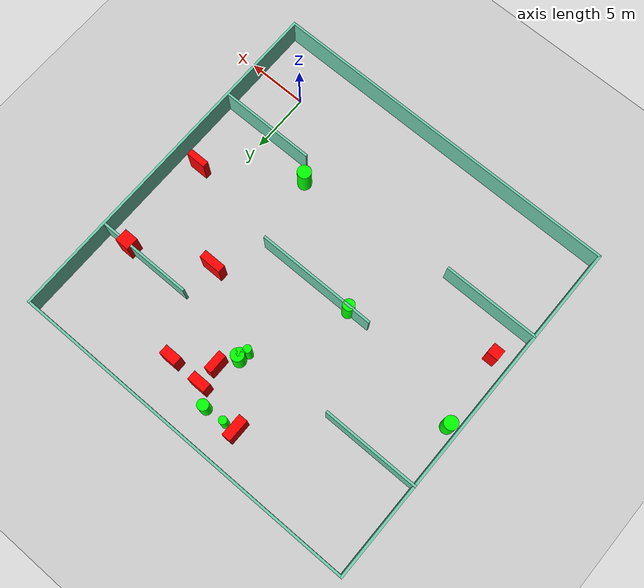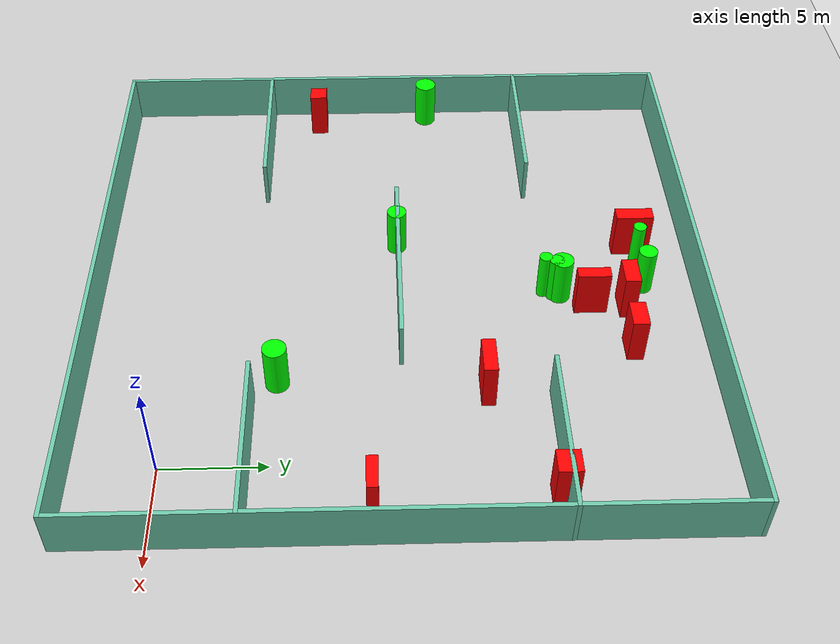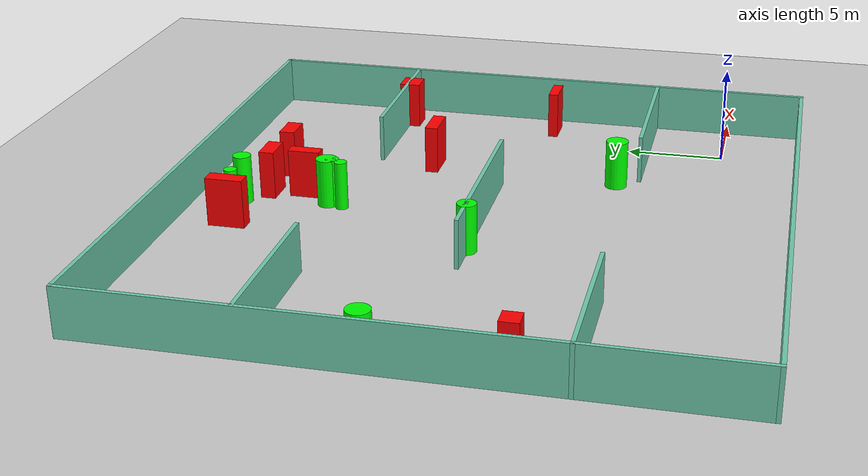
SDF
<sdf version="1.7">
 <world name="default">
  <light name="sun" type="directional">
   <pose>0 0 10 0 -0 0</pose>
   <diffuse>0.8 0.8 0.8 1</diffuse>
   <specular>0.2 0.2 0.2 1</specular>
   <attenuation>
    <range>1000</range>
    <constant>0.9</constant>
    <linear>0.01</linear>
    <quadratic>0.001</quadratic>
   </attenuation>
   <direction>-0.5 0.1 -0.9</direction>
   <spot><inner_angle>0</inner_angle><outer_angle>0</outer_angle><falloff>0</falloff></spot>
  </light>
  <model name="ground_plane">
   <static>1</static>
   <link name="link">
    <collision name="collision">
     <geometry><plane><normal>0 0 1</normal><size>100 100</size></plane></geometry>
     <surface>
      <contact><collide_bitmask>65535</collide_bitmask></contact>
      <friction><ode><mu>100</mu><mu2>50</mu2></ode></friction>
     </surface>
    </collision>
    <visual name="visual">
     <cast_shadows>0</cast_shadows>
     <geometry><plane><normal>0 0 1</normal><size>100 100</size></plane></geometry>
     <material>
      <script><uri>file://media/materials/scripts/gazebo.material</uri><name>Gazebo/Grey</name></script>
     </material>
    </visual>
   </link>
  </model>
  <gravity>0 0 -9.8</gravity>
  <magnetic_field>6e-06 2.3e-05 -4.2e-05</magnetic_field>
  <atmosphere type="adiabatic"/>
  <physics type="ode">
   <max_step_size>0.001</max_step_size>
   <real_time_factor>1</real_time_factor>
   <real_time_update_rate>1000</real_time_update_rate>
  </physics>
  <scene><ambient>0.4 0.4 0.4 1</ambient><background>0.7 0.7 0.7 1</background><shadows>1</shadows></scene>
  <spherical_coordinates>
   <surface_model>EARTH_WGS84</surface_model>
   <latitude_deg>0</latitude_deg>
   <longitude_deg>0</longitude_deg>
   <elevation>0</elevation>
   <heading_deg>0</heading_deg>
  </spherical_coordinates>
  <model name="my_base_walls">
   <link name="Wall_10">
    <collision name="Wall_10_Collision">
     <geometry><box><size>8.2 0.2 2.5</size></box></geometry>
     <pose>0 0 1.25 0 -0 0</pose>
    </collision>
    <visual name="Wall_10_Visual">
     <pose>0 0 1.25 0 -0 0</pose>
     <geometry><box><size>8.2 0.2 2.5</size></box></geometry>
     <material>
      <script><uri>file://media/materials/scripts/gazebo.material</uri><name>Gazebo/Grey</name></script>
      <ambient>0.435294 0.796078 0.67451 1</ambient>
     </material>
     <meta><layer>0</layer></meta>
    </visual>
    <pose>-11 -7 0 0 -0 0</pose>
   </link>
   <link name="Wall_12">
    <collision name="Wall_12_Collision">
     <geometry><box><size>8.2 0.2 2.5</size></box></geometry>
     <pose>0 0 1.25 0 -0 0</pose>
    </collision>
    <visual name="Wall_12_Visual">
     <pose>0 0 1.25 0 -0 0</pose>
     <geometry><box><size>8.2 0.2 2.5</size></box></geometry>
     <material>
      <script><uri>file://media/materials/scripts/gazebo.material</uri><name>Gazebo/Grey</name></script>
      <ambient>0.435294 0.796078 0.67451 1</ambient>
     </material>
     <meta><layer>0</layer></meta>
    </visual>
    <pose>-11 7 0 0 -0 0</pose>
   </link>
   <link name="Wall_14">
    <collision name="Wall_14_Collision">
     <geometry><box><size>8.2 0.2 2.5</size></box></geometry>
     <pose>0 0 1.25 0 -0 0</pose>
    </collision>
    <visual name="Wall_14_Visual">
     <pose>0 0 1.25 0 -0 0</pose>
     <geometry><box><size>8.2 0.2 2.5</size></box></geometry>
     <material>
      <script><uri>file://media/materials/scripts/gazebo.material</uri><name>Gazebo/Grey</name></script>
      <ambient>0.435294 0.796078 0.67451 1</ambient>
     </material>
     <meta><layer>0</layer></meta>
    </visual>
    <pose>11 7 0 0 -0 3.14159</pose>
   </link>
   <link name="Wall_16">
    <collision name="Wall_16_Collision">
     <geometry><box><size>10.2 0.2 2.5</size></box></geometry>
     <pose>0 0 1.25 0 -0 0</pose>
    </collision>
    <visual name="Wall_16_Visual">
     <pose>0 0 1.25 0 -0 0</pose>
     <geometry><box><size>10.2 0.2 2.5</size></box></geometry>
     <material>
      <script><uri>file://media/materials/scripts/gazebo.material</uri><name>Gazebo/Grey</name></script>
      <ambient>0.435294 0.796078 0.67451 1</ambient>
     </material>
     <meta><layer>0</layer></meta>
    </visual>
    <pose>0 0 0 0 -0 3.14159</pose>
   </link>
   <link name="Wall_2">
    <collision name="Wall_2_Collision">
     <geometry><box><size>30.2 0.2 2.5</size></box></geometry>
     <pose>0 0 1.25 0 -0 0</pose>
    </collision>
    <visual name="Wall_2_Visual">
     <pose>0 0 1.25 0 -0 0</pose>
     <geometry><box><size>30.2 0.2 2.5</size></box></geometry>
     <material>
      <script><uri>file://media/materials/scripts/gazebo.material</uri><name>Gazebo/Grey</name></script>
      <ambient>0.435294 0.796078 0.67451 1</ambient>
     </material>
     <meta><layer>0</layer></meta>
    </visual>
    <pose>0 -15 0 0 -0 3.14159</pose>
   </link>
   <link name="Wall_3">
    <collision name="Wall_3_Collision">
     <geometry><box><size>30.2 0.2 2.5</size></box></geometry>
     <pose>0 0 1.25 0 -0 0</pose>
    </collision>
    <visual name="Wall_3_Visual">
     <pose>0 0 1.25 0 -0 0</pose>
     <geometry><box><size>30.2 0.2 2.5</size></box></geometry>
     <material>
      <script><uri>file://media/materials/scripts/gazebo.material</uri><name>Gazebo/Grey</name></script>
      <ambient>0.435294 0.796078 0.67451 1</ambient>
     </material>
     <meta><layer>0</layer></meta>
    </visual>
    <pose>-15 0 0 0 -0 1.5708</pose>
   </link>
   <link name="Wall_4">
    <collision name="Wall_4_Collision">
     <geometry><box><size>30.2 0.2 2.5</size></box></geometry>
     <pose>0 0 1.25 0 -0 0</pose>
    </collision>
    <visual name="Wall_4_Visual">
     <pose>0 0 1.25 0 -0 0</pose>
     <geometry><box><size>30.2 0.2 2.5</size></box></geometry>
     <material>
      <script><uri>file://media/materials/scripts/gazebo.material</uri><name>Gazebo/Grey</name></script>
      <ambient>0.435294 0.796078 0.67451 1</ambient>
     </material>
     <meta><layer>0</layer></meta>
    </visual>
    <pose>0 15 0 0 -0 0</pose>
   </link>
   <link name="Wall_6">
    <collision name="Wall_6_Collision">
     <geometry><box><size>30.2 0.2 2.5</size></box></geometry>
     <pose>0 0 1.25 0 -0 0</pose>
    </collision>
    <visual name="Wall_6_Visual">
     <pose>0 0 1.25 0 -0 0</pose>
     <geometry><box><size>30.2 0.2 2.5</size></box></geometry>
     <material>
      <script><uri>file://media/materials/scripts/gazebo.material</uri><name>Gazebo/Grey</name></script>
      <ambient>0.435294 0.796078 0.67451 1</ambient>
     </material>
     <meta><layer>0</layer></meta>
    </visual>
    <pose>15 0 0 0 -0 1.5708</pose>
   </link>
   <link name="Wall_8">
    <collision name="Wall_8_Collision">
     <geometry><box><size>8.2 0.2 2.5</size></box></geometry>
     <pose>0 0 1.25 0 -0 0</pose>
    </collision>
    <visual name="Wall_8_Visual">
     <pose>0 0 1.25 0 -0 0</pose>
     <geometry><box><size>8.2 0.2 2.5</size></box></geometry>
     <material>
      <script><uri>file://media/materials/scripts/gazebo.material</uri><name>Gazebo/Grey</name></script>
      <ambient>0.435294 0.796078 0.67451 1</ambient>
     </material>
     <meta><layer>0</layer></meta>
    </visual>
    <pose>11 -7 0 0 -0 3.14159</pose>
   </link>
   <static>1</static>
   <pose>-11 11 0 0 -0 0</pose>
  </model>
  <model name="cylinder1">
   <static>1</static>
   <link name="link">
    <inertial>
     <mass>1</mass>
     <inertia><ixx>0.5</ixx><ixy>0</ixy><ixz>0</ixz><iyy>0.5</iyy><iyz>0</iyz><izz>1</izz></inertia>
    </inertial>
    <collision name="collision">
     <geometry><cylinder><radius>0.5716524730912058</radius><length>2.5</length></cylinder></geometry>
    </collision>
    <visual name="visual">
     <geometry><cylinder><radius>0.5716524730912058</radius><length>2.5</length></cylinder></geometry>
     <material>
      <ambient>0 1 0 1</ambient>
      <diffuse>0 1 0 1</diffuse>
      <specular>0.1 0.1 0.1 1</specular>
      <emissive>0 0 0 0</emissive>
     </material>
    </visual>
   </link>
   <pose>-4.825366787726914 5.125975422252392 1.25 0 0 0</pose>
  </model>
  <model name="cylinder2">
   <static>1</static>
   <link name="link">
    <inertial>
     <mass>1</mass>
     <inertia><ixx>0.5</ixx><ixy>0</ixy><ixz>0</ixz><iyy>0.5</iyy><iyz>0</iyz><izz>1</izz></inertia>
    </inertial>
    <collision name="collision">
     <geometry><cylinder><radius>0.358593730173022</radius><length>2.5</length></cylinder></geometry>
    </collision>
    <visual name="visual">
     <geometry><cylinder><radius>0.358593730173022</radius><length>2.5</length></cylinder></geometry>
     <material>
      <ambient>0 1 0 1</ambient>
      <diffuse>0 1 0 1</diffuse>
      <specular>0.1 0.1 0.1 1</specular>
      <emissive>0 0 0 0</emissive>
     </material>
    </visual>
   </link>
   <pose>-10.340292719318903 18.773079529511968 1.25 0 0 0</pose>
  </model>
  <model name="cylinder3">
   <static>1</static>
   <link name="link">
    <inertial>
     <mass>1</mass>
     <inertia><ixx>0.5</ixx><ixy>0</ixy><ixz>0</ixz><iyy>0.5</iyy><iyz>0</iyz><izz>1</izz></inertia>
    </inertial>
    <collision name="collision">
     <geometry><cylinder><radius>0.45779435942809155</radius><length>2.5</length></cylinder></geometry>
    </collision>
    <visual name="visual">
     <geometry><cylinder><radius>0.45779435942809155</radius><length>2.5</length></cylinder></geometry>
     <material>
      <ambient>0 1 0 1</ambient>
      <diffuse>0 1 0 1</diffuse>
      <specular>0.1 0.1 0.1 1</specular>
      <emissive>0 0 0 0</emissive>
     </material>
    </visual>
   </link>
   <pose>-10.855120282963037 23.37263058841784 1.25 0 0 0</pose>
  </model>
  <model name="cylinder4">
   <static>1</static>
   <link name="link">
    <inertial>
     <mass>1</mass>
     <inertia><ixx>0.5</ixx><ixy>0</ixy><ixz>0</ixz><iyy>0.5</iyy><iyz>0</iyz><izz>1</izz></inertia>
    </inertial>
    <collision name="collision">
     <geometry><cylinder><radius>0.3201317083537075</radius><length>2.5</length></cylinder></geometry>
    </collision>
    <visual name="visual">
     <geometry><cylinder><radius>0.3201317083537075</radius><length>2.5</length></cylinder></geometry>
     <material>
      <ambient>0 1 0 1</ambient>
      <diffuse>0 1 0 1</diffuse>
      <specular>0.1 0.1 0.1 1</specular>
      <emissive>0 0 0 0</emissive>
     </material>
    </visual>
   </link>
   <pose>-10.596272108391465 18.257706122356154 1.25 0 0 0</pose>
  </model>
  <model name="cylinder5">
   <static>1</static>
   <link name="link">
    <inertial>
     <mass>1</mass>
     <inertia><ixx>0.5</ixx><ixy>0</ixy><ixz>0</ixz><iyy>0.5</iyy><iyz>0</iyz><izz>1</izz></inertia>
    </inertial>
    <collision name="collision">
     <geometry><cylinder><radius>0.3260762800645876</radius><length>2.5</length></cylinder></geometry>
    </collision>
    <visual name="visual">
     <geometry><cylinder><radius>0.3260762800645876</radius><length>2.5</length></cylinder></geometry>
     <material>
      <ambient>0 1 0 1</ambient>
      <diffuse>0 1 0 1</diffuse>
      <specular>0.1 0.1 0.1 1</specular>
      <emissive>0 0 0 0</emissive>
     </material>
    </visual>
   </link>
   <pose>-12.68274577472618 23.2670741138028 1.25 0 0 0</pose>
  </model>
  <model name="cylinder6">
   <static>1</static>
   <link name="link">
    <inertial>
     <mass>1</mass>
     <inertia><ixx>0.5</ixx><ixy>0</ixy><ixz>0</ixz><iyy>0.5</iyy><iyz>0</iyz><izz>1</izz></inertia>
    </inertial>
    <collision name="collision">
     <geometry><cylinder><radius>0.5625251787955692</radius><length>2.5</length></cylinder></geometry>
    </collision>
    <visual name="visual">
     <geometry><cylinder><radius>0.5625251787955692</radius><length>2.5</length></cylinder></geometry>
     <material>
      <ambient>0 1 0 1</ambient>
      <diffuse>0 1 0 1</diffuse>
      <specular>0.1 0.1 0.1 1</specular>
      <emissive>0 0 0 0</emissive>
     </material>
    </visual>
   </link>
   <pose>-25.205937213788008 12.89044432240723 1.25 0 0 0</pose>
  </model>
  <model name="cylinder7">
   <static>1</static>
   <link name="link">
    <inertial>
     <mass>1</mass>
     <inertia><ixx>0.5</ixx><ixy>0</ixy><ixz>0</ixz><iyy>0.5</iyy><iyz>0</iyz><izz>1</izz></inertia>
    </inertial>
    <collision name="collision">
     <geometry><cylinder><radius>0.4862868052519067</radius><length>2.5</length></cylinder></geometry>
    </collision>
    <visual name="visual">
     <geometry><cylinder><radius>0.4862868052519067</radius><length>2.5</length></cylinder></geometry>
     <material>
      <ambient>0 1 0 1</ambient>
      <diffuse>0 1 0 1</diffuse>
      <specular>0.1 0.1 0.1 1</specular>
      <emissive>0 0 0 0</emissive>
     </material>
    </visual>
   </link>
   <pose>-14.120507425452189 10.961767746668261 1.25 0 0 0</pose>
  </model>
  <model name="cylinder8">
   <static>1</static>
   <link name="link">
    <inertial>
     <mass>1</mass>
     <inertia><ixx>0.5</ixx><ixy>0</ixy><ixz>0</ixz><iyy>0.5</iyy><iyz>0</iyz><izz>1</izz></inertia>
    </inertial>
    <collision name="collision">
     <geometry><cylinder><radius>0.535657113548556</radius><length>2.5</length></cylinder></geometry>
    </collision>
    <visual name="visual">
     <geometry><cylinder><radius>0.535657113548556</radius><length>2.5</length></cylinder></geometry>
     <material>
      <ambient>0 1 0 1</ambient>
      <diffuse>0 1 0 1</diffuse>
      <specular>0.1 0.1 0.1 1</specular>
      <emissive>0 0 0 0</emissive>
     </material>
    </visual>
   </link>
   <pose>-10.330872439982496 19.0647671959923 1.25 0 0 0</pose>
  </model>
  <model name="box1">
   <static>1</static>
   <link name="link">
    <inertial>
     <mass>1</mass>
     <inertia><ixx>0.083</ixx><ixy>0</ixy><ixz>0</ixz><iyy>0.083</iyy><iyz>0</iyz><izz>0.083</izz></inertia>
    </inertial>
    <collision name="collision">
     <geometry><box><size>1.1733654958093807 1.0954812922697563 2.5</size></box></geometry>
    </collision>
    <visual name="visual">
     <geometry><box><size>1.1733654958093807 1.0954812922697563 2.5</size></box></geometry>
     <material>
      <ambient>1 0 0 1</ambient>
      <diffuse>1 0 0 1</diffuse>
      <specular>0.1 0.1 0.1 1</specular>
      <emissive>0 0 0 0</emissive>
     </material>
    </visual>
    <sensor name="my_contact" type="contact">
     <contact><collision>box_collision</collision><topic>__default_topic__</topic></contact>
    </sensor>
   </link>
   <pose>1.8166171132399853 17.858169035895934 1.25 0 0 0</pose>
  </model>
  <model name="box2">
   <static>1</static>
   <link name="link">
    <inertial>
     <mass>1</mass>
     <inertia><ixx>0.083</ixx><ixy>0</ixy><ixz>0</ixz><iyy>0.083</iyy><iyz>0</iyz><izz>0.083</izz></inertia>
    </inertial>
    <collision name="collision">
     <geometry><box><size>1.883369011475807 0.6648076968473209 2.5</size></box></geometry>
    </collision>
    <visual name="visual">
     <geometry><box><size>1.883369011475807 0.6648076968473209 2.5</size></box></geometry>
     <material>
      <ambient>1 0 0 1</ambient>
      <diffuse>1 0 0 1</diffuse>
      <specular>0.1 0.1 0.1 1</specular>
      <emissive>0 0 0 0</emissive>
     </material>
    </visual>
    <sensor name="my_contact" type="contact">
     <contact><collision>box_collision</collision><topic>__default_topic__</topic></contact>
    </sensor>
   </link>
   <pose>-4.220425433496892 14.972603474593743 1.25 0 0 0</pose>
  </model>
  <model name="box3">
   <static>1</static>
   <link name="link">
    <inertial>
     <mass>1</mass>
     <inertia><ixx>0.083</ixx><ixy>0</ixy><ixz>0</ixz><iyy>0.083</iyy><iyz>0</iyz><izz>0.083</izz></inertia>
    </inertial>
    <collision name="collision">
     <geometry><box><size>1.4377492416930853 0.7980793227751644 2.5</size></box></geometry>
    </collision>
    <visual name="visual">
     <geometry><box><size>1.4377492416930853 0.7980793227751644 2.5</size></box></geometry>
     <material>
      <ambient>1 0 0 1</ambient>
      <diffuse>1 0 0 1</diffuse>
      <specular>0.1 0.1 0.1 1</specular>
      <emissive>0 0 0 0</emissive>
     </material>
    </visual>
    <sensor name="my_contact" type="contact">
     <contact><collision>box_collision</collision><topic>__default_topic__</topic></contact>
    </sensor>
   </link>
   <pose>-6.6426914602145 22.219564192105512 1.25 0 0 0</pose>
  </model>
  <model name="box4">
   <static>1</static>
   <link name="link">
    <inertial>
     <mass>1</mass>
     <inertia><ixx>0.083</ixx><ixy>0</ixy><ixz>0</ixz><iyy>0.083</iyy><iyz>0</iyz><izz>0.083</izz></inertia>
    </inertial>
    <collision name="collision">
     <geometry><box><size>0.754451898504223 1.8906122501644034 2.5</size></box></geometry>
    </collision>
    <visual name="visual">
     <geometry><box><size>0.754451898504223 1.8906122501644034 2.5</size></box></geometry>
     <material>
      <ambient>1 0 0 1</ambient>
      <diffuse>1 0 0 1</diffuse>
      <specular>0.1 0.1 0.1 1</specular>
      <emissive>0 0 0 0</emissive>
     </material>
    </visual>
    <sensor name="my_contact" type="contact">
     <contact><collision>box_collision</collision><topic>__default_topic__</topic></contact>
    </sensor>
   </link>
   <pose>-13.676445955532007 23.123103502848878 1.25 0 0 0</pose>
  </model>
  <model name="box5">
   <static>1</static>
   <link name="link">
    <inertial>
     <mass>1</mass>
     <inertia><ixx>0.083</ixx><ixy>0</ixy><ixz>0</ixz><iyy>0.083</iyy><iyz>0</iyz><izz>0.083</izz></inertia>
    </inertial>
    <collision name="collision">
     <geometry><box><size>1.649859176678725 0.5232326854988708 2.5</size></box></geometry>
    </collision>
    <visual name="visual">
     <geometry><box><size>1.649859176678725 0.5232326854988708 2.5</size></box></geometry>
     <material>
      <ambient>1 0 0 1</ambient>
      <diffuse>1 0 0 1</diffuse>
      <specular>0.1 0.1 0.1 1</specular>
      <emissive>0 0 0 0</emissive>
     </material>
    </visual>
    <sensor name="my_contact" type="contact">
     <contact><collision>box_collision</collision><topic>__default_topic__</topic></contact>
    </sensor>
   </link>
   <pose>2.1514210169887846 9.553881998914305 1.25 0 0 0</pose>
  </model>
  <model name="box6">
   <static>1</static>
   <link name="link">
    <inertial>
     <mass>1</mass>
     <inertia><ixx>0.083</ixx><ixy>0</ixy><ixz>0</ixz><iyy>0.083</iyy><iyz>0</iyz><izz>0.083</izz></inertia>
    </inertial>
    <collision name="collision">
     <geometry><box><size>1.526737443246152 0.7713485029973217 2.5</size></box></geometry>
    </collision>
    <visual name="visual">
     <geometry><box><size>1.526737443246152 0.7713485029973217 2.5</size></box></geometry>
     <material>
      <ambient>1 0 0 1</ambient>
      <diffuse>1 0 0 1</diffuse>
      <specular>0.1 0.1 0.1 1</specular>
      <emissive>0 0 0 0</emissive>
     </material>
    </visual>
    <sensor name="my_contact" type="contact">
     <contact><collision>box_collision</collision><topic>__default_topic__</topic></contact>
    </sensor>
   </link>
   <pose>-9.523275651856133 22.30501532894976 1.25 0 0 0</pose>
  </model>
  <model name="box7">
   <static>1</static>
   <link name="link">
    <inertial>
     <mass>1</mass>
     <inertia><ixx>0.083</ixx><ixy>0</ixy><ixz>0</ixz><iyy>0.083</iyy><iyz>0</iyz><izz>0.083</izz></inertia>
    </inertial>
    <collision name="collision">
     <geometry><box><size>0.9471417050175797 0.9073021747959237 2.5</size></box></geometry>
    </collision>
    <visual name="visual">
     <geometry><box><size>0.9471417050175797 0.9073021747959237 2.5</size></box></geometry>
     <material>
      <ambient>1 0 0 1</ambient>
      <diffuse>1 0 0 1</diffuse>
      <specular>0.1 0.1 0.1 1</specular>
      <emissive>0 0 0 0</emissive>
     </material>
    </visual>
    <sensor name="my_contact" type="contact">
     <contact><collision>box_collision</collision><topic>__default_topic__</topic></contact>
    </sensor>
   </link>
   <pose>-24.51686463646214 6.733400179440423 1.25 0 0 0</pose>
  </model>
  <model name="box8">
   <static>1</static>
   <link name="link">
    <inertial>
     <mass>1</mass>
     <inertia><ixx>0.083</ixx><ixy>0</ixy><ixz>0</ixz><iyy>0.083</iyy><iyz>0</iyz><izz>0.083</izz></inertia>
    </inertial>
    <collision name="collision">
     <geometry><box><size>0.6432314640736934 1.632722413039426 2.5</size></box></geometry>
    </collision>
    <visual name="visual">
     <geometry><box><size>0.6432314640736934 1.632722413039426 2.5</size></box></geometry>
     <material>
      <ambient>1 0 0 1</ambient>
      <diffuse>1 0 0 1</diffuse>
      <specular>0.1 0.1 0.1 1</specular>
      <emissive>0 0 0 0</emissive>
     </material>
    </visual>
    <sensor name="my_contact" type="contact">
     <contact><collision>box_collision</collision><topic>__default_topic__</topic></contact>
    </sensor>
   </link>
   <pose>-9.438990956748915 20.48890988978126 1.25 0 0 0</pose>
  </model>
 </world>
</sdf>
